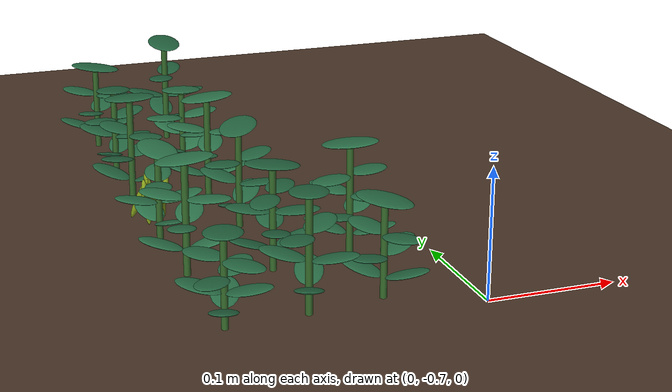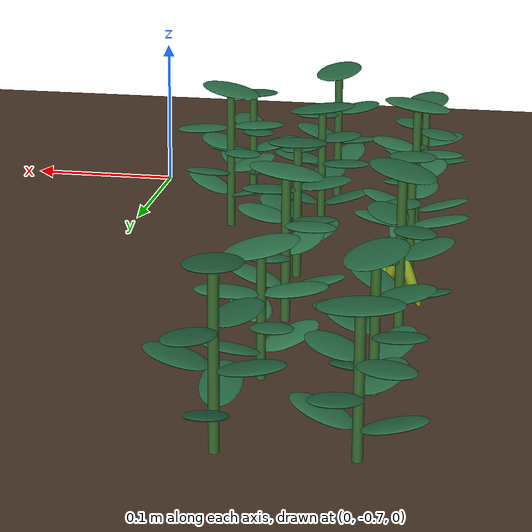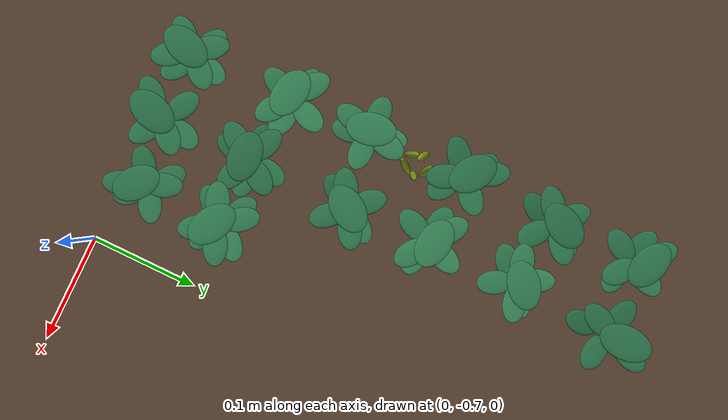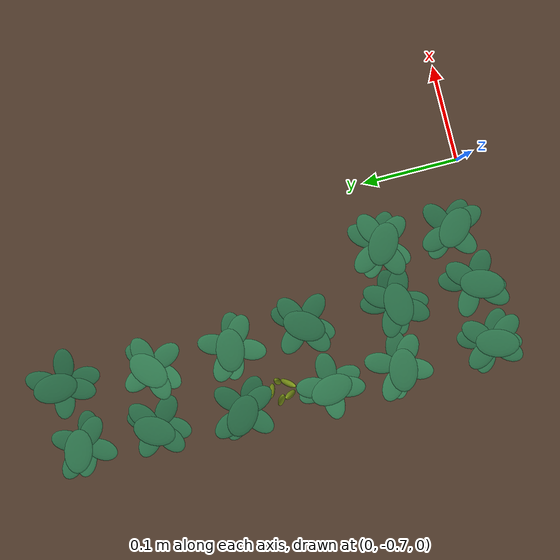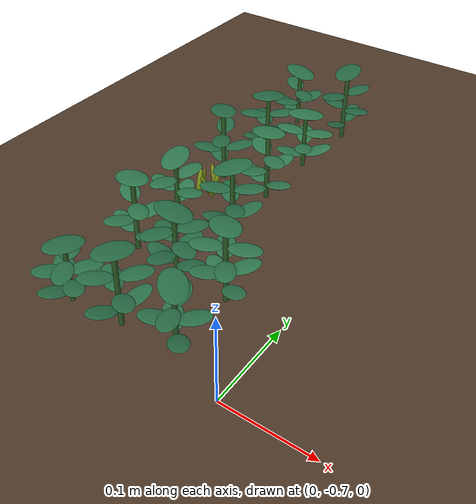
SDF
<sdf version="1.9">
 <world name="jim_field">
  <model name="ground_plane">
   <static>true</static>
   <link name="link">
    <collision name="collision">
     <geometry><plane><normal>0 0 1</normal><size>40 40</size></plane></geometry>
    </collision>
    <visual name="visual">
     <geometry><plane><normal>0 0 1</normal><size>40 40</size></plane></geometry>
     <material>
      <ambient>0.20 0.15 0.11 1</ambient>
      <diffuse>0.30 0.22 0.16 1</diffuse>
      <specular>0.01 0.01 0.01 1</specular>
     </material>
    </visual>
   </link>
  </model>
  <model name="field">
   <static>true</static>
   <pose>0.1837 -0.2516 0 0 0 0</pose>
   <model name="crop_2">
    <static>true</static>
    <pose>-0.3719 -0.4316 0 0 0 0</pose>
    <link name="link">
     <visual name="stem">
      <pose>0 0 0.0330 0 0 0</pose>
      <geometry><cylinder><radius>0.0025</radius><length>0.0660</length></cylinder></geometry>
      <material>
       <ambient>0.10 0.22 0.09 1</ambient>
       <diffuse>0.20 0.40 0.16 1</diffuse>
       <specular>0.05 0.06 0.05 1</specular>
      </material>
     </visual>
     <visual name="leaflet_0_0">
      <pose>-0.0053 -0.0167 0.0198 0 -0.300 4.4043</pose>
      <geometry><ellipsoid><radii>0.0170 0.0105 0.0016</radii></ellipsoid></geometry>
      <material>
       <ambient>0.083 0.221 0.127 1</ambient>
       <diffuse>0.155 0.422 0.269 1</diffuse>
       <specular>0.05 0.06 0.05 1</specular>
      </material>
     </visual>
     <visual name="leaflet_0_1">
      <pose>0.0053 0.0167 0.0198 0 -0.300 7.5459</pose>
      <geometry><ellipsoid><radii>0.0170 0.0105 0.0016</radii></ellipsoid></geometry>
      <material>
       <ambient>0.083 0.221 0.127 1</ambient>
       <diffuse>0.155 0.422 0.269 1</diffuse>
       <specular>0.05 0.06 0.05 1</specular>
      </material>
     </visual>
     <visual name="leaflet_1_0">
      <pose>0.0151 -0.0088 0.0300 0 -0.200 5.7543</pose>
      <geometry><ellipsoid><radii>0.0170 0.0105 0.0016</radii></ellipsoid></geometry>
      <material>
       <ambient>0.083 0.221 0.127 1</ambient>
       <diffuse>0.155 0.422 0.269 1</diffuse>
       <specular>0.05 0.06 0.05 1</specular>
      </material>
     </visual>
     <visual name="leaflet_1_1">
      <pose>-0.0151 0.0088 0.0300 0 -0.200 8.8959</pose>
      <geometry><ellipsoid><radii>0.0170 0.0105 0.0016</radii></ellipsoid></geometry>
      <material>
       <ambient>0.083 0.221 0.127 1</ambient>
       <diffuse>0.155 0.422 0.269 1</diffuse>
       <specular>0.05 0.06 0.05 1</specular>
      </material>
     </visual>
     <visual name="leaflet_2_0">
      <pose>0.0119 0.0128 0.0402 0 -0.100 7.1043</pose>
      <geometry><ellipsoid><radii>0.0170 0.0105 0.0016</radii></ellipsoid></geometry>
      <material>
       <ambient>0.083 0.221 0.127 1</ambient>
       <diffuse>0.155 0.422 0.269 1</diffuse>
       <specular>0.05 0.06 0.05 1</specular>
      </material>
     </visual>
     <visual name="leaflet_2_1">
      <pose>-0.0119 -0.0128 0.0402 0 -0.100 10.2459</pose>
      <geometry><ellipsoid><radii>0.0170 0.0105 0.0016</radii></ellipsoid></geometry>
      <material>
       <ambient>0.083 0.221 0.127 1</ambient>
       <diffuse>0.155 0.422 0.269 1</diffuse>
       <specular>0.05 0.06 0.05 1</specular>
      </material>
     </visual>
     <visual name="leaflet_3_0">
      <pose>-0.0099 0.0145 0.0505 0 0.000 8.4543</pose>
      <geometry><ellipsoid><radii>0.0170 0.0105 0.0016</radii></ellipsoid></geometry>
      <material>
       <ambient>0.083 0.221 0.127 1</ambient>
       <diffuse>0.155 0.422 0.269 1</diffuse>
       <specular>0.05 0.06 0.05 1</specular>
      </material>
     </visual>
     <visual name="leaflet_3_1">
      <pose>0.0099 -0.0145 0.0505 0 0.000 11.5959</pose>
      <geometry><ellipsoid><radii>0.0170 0.0105 0.0016</radii></ellipsoid></geometry>
      <material>
       <ambient>0.083 0.221 0.127 1</ambient>
       <diffuse>0.155 0.422 0.269 1</diffuse>
       <specular>0.05 0.06 0.05 1</specular>
      </material>
     </visual>
     <visual name="leaflet_terminal">
      <pose>0 0 0.0700 0 -0.12 4.4043</pose>
      <geometry><ellipsoid><radii>0.0215 0.0140 0.0018</radii></ellipsoid></geometry>
      <material>
       <ambient>0.083 0.221 0.127 1</ambient>
       <diffuse>0.155 0.422 0.269 1</diffuse>
       <specular>0.05 0.06 0.05 1</specular>
      </material>
     </visual>
    </link>
   </model>
   <model name="crop_3">
    <static>true</static>
    <pose>-0.3105 -0.4281 0 0 0 0</pose>
    <link name="link">
     <visual name="stem">
      <pose>0 0 0.0430 0 0 0</pose>
      <geometry><cylinder><radius>0.0027</radius><length>0.0861</length></cylinder></geometry>
      <material>
       <ambient>0.10 0.22 0.09 1</ambient>
       <diffuse>0.20 0.40 0.16 1</diffuse>
       <specular>0.05 0.06 0.05 1</specular>
      </material>
     </visual>
     <visual name="leaflet_0_0">
      <pose>-0.0060 -0.0176 0.0258 0 -0.300 4.3843</pose>
      <geometry><ellipsoid><radii>0.0170 0.0105 0.0016</radii></ellipsoid></geometry>
      <material>
       <ambient>0.080 0.217 0.124 1</ambient>
       <diffuse>0.150 0.414 0.264 1</diffuse>
       <specular>0.05 0.06 0.05 1</specular>
      </material>
     </visual>
     <visual name="leaflet_0_1">
      <pose>0.0060 0.0176 0.0258 0 -0.300 7.5259</pose>
      <geometry><ellipsoid><radii>0.0170 0.0105 0.0016</radii></ellipsoid></geometry>
      <material>
       <ambient>0.080 0.217 0.124 1</ambient>
       <diffuse>0.150 0.414 0.264 1</diffuse>
       <specular>0.05 0.06 0.05 1</specular>
      </material>
     </visual>
     <visual name="leaflet_1_0">
      <pose>0.0159 -0.0097 0.0436 0 -0.200 5.7343</pose>
      <geometry><ellipsoid><radii>0.0170 0.0105 0.0016</radii></ellipsoid></geometry>
      <material>
       <ambient>0.080 0.217 0.124 1</ambient>
       <diffuse>0.150 0.414 0.264 1</diffuse>
       <specular>0.05 0.06 0.05 1</specular>
      </material>
     </visual>
     <visual name="leaflet_1_1">
      <pose>-0.0159 0.0097 0.0436 0 -0.200 8.8759</pose>
      <geometry><ellipsoid><radii>0.0170 0.0105 0.0016</radii></ellipsoid></geometry>
      <material>
       <ambient>0.080 0.217 0.124 1</ambient>
       <diffuse>0.150 0.414 0.264 1</diffuse>
       <specular>0.05 0.06 0.05 1</specular>
      </material>
     </visual>
     <visual name="leaflet_2_0">
      <pose>0.0129 0.0134 0.0614 0 -0.100 7.0843</pose>
      <geometry><ellipsoid><radii>0.0170 0.0105 0.0016</radii></ellipsoid></geometry>
      <material>
       <ambient>0.080 0.217 0.124 1</ambient>
       <diffuse>0.150 0.414 0.264 1</diffuse>
       <specular>0.05 0.06 0.05 1</specular>
      </material>
     </visual>
     <visual name="leaflet_2_1">
      <pose>-0.0129 -0.0134 0.0614 0 -0.100 10.2259</pose>
      <geometry><ellipsoid><radii>0.0170 0.0105 0.0016</radii></ellipsoid></geometry>
      <material>
       <ambient>0.080 0.217 0.124 1</ambient>
       <diffuse>0.150 0.414 0.264 1</diffuse>
       <specular>0.05 0.06 0.05 1</specular>
      </material>
     </visual>
     <visual name="leaflet_terminal">
      <pose>0 0 0.0901 0 -0.12 4.3843</pose>
      <geometry><ellipsoid><radii>0.0215 0.0140 0.0018</radii></ellipsoid></geometry>
      <material>
       <ambient>0.080 0.217 0.124 1</ambient>
       <diffuse>0.150 0.414 0.264 1</diffuse>
       <specular>0.05 0.06 0.05 1</specular>
      </material>
     </visual>
    </link>
   </model>
   <model name="crop_4">
    <static>true</static>
    <pose>-0.2514 -0.4186 0 0 0 0</pose>
    <link name="link">
     <visual name="stem">
      <pose>0 0 0.0350 0 0 0</pose>
      <geometry><cylinder><radius>0.0026</radius><length>0.0701</length></cylinder></geometry>
      <material>
       <ambient>0.10 0.22 0.09 1</ambient>
       <diffuse>0.20 0.40 0.16 1</diffuse>
       <specular>0.05 0.06 0.05 1</specular>
      </material>
     </visual>
     <visual name="leaflet_0_0">
      <pose>-0.0129 0.0122 0.0210 0 -0.300 2.3859</pose>
      <geometry><ellipsoid><radii>0.0170 0.0105 0.0016</radii></ellipsoid></geometry>
      <material>
       <ambient>0.081 0.218 0.124 1</ambient>
       <diffuse>0.152 0.416 0.265 1</diffuse>
       <specular>0.05 0.06 0.05 1</specular>
      </material>
     </visual>
     <visual name="leaflet_0_1">
      <pose>0.0129 -0.0122 0.0210 0 -0.300 5.5275</pose>
      <geometry><ellipsoid><radii>0.0170 0.0105 0.0016</radii></ellipsoid></geometry>
      <material>
       <ambient>0.081 0.218 0.124 1</ambient>
       <diffuse>0.152 0.416 0.265 1</diffuse>
       <specular>0.05 0.06 0.05 1</specular>
      </material>
     </visual>
     <visual name="leaflet_1_0">
      <pose>-0.0147 -0.0099 0.0355 0 -0.200 3.7359</pose>
      <geometry><ellipsoid><radii>0.0170 0.0105 0.0016</radii></ellipsoid></geometry>
      <material>
       <ambient>0.081 0.218 0.124 1</ambient>
       <diffuse>0.152 0.416 0.265 1</diffuse>
       <specular>0.05 0.06 0.05 1</specular>
      </material>
     </visual>
     <visual name="leaflet_1_1">
      <pose>0.0147 0.0099 0.0355 0 -0.200 6.8775</pose>
      <geometry><ellipsoid><radii>0.0170 0.0105 0.0016</radii></ellipsoid></geometry>
      <material>
       <ambient>0.081 0.218 0.124 1</ambient>
       <diffuse>0.152 0.416 0.265 1</diffuse>
       <specular>0.05 0.06 0.05 1</specular>
      </material>
     </visual>
     <visual name="leaflet_2_0">
      <pose>0.0065 -0.0165 0.0500 0 -0.100 5.0859</pose>
      <geometry><ellipsoid><radii>0.0170 0.0105 0.0016</radii></ellipsoid></geometry>
      <material>
       <ambient>0.081 0.218 0.124 1</ambient>
       <diffuse>0.152 0.416 0.265 1</diffuse>
       <specular>0.05 0.06 0.05 1</specular>
      </material>
     </visual>
     <visual name="leaflet_2_1">
      <pose>-0.0065 0.0165 0.0500 0 -0.100 8.2275</pose>
      <geometry><ellipsoid><radii>0.0170 0.0105 0.0016</radii></ellipsoid></geometry>
      <material>
       <ambient>0.081 0.218 0.124 1</ambient>
       <diffuse>0.152 0.416 0.265 1</diffuse>
       <specular>0.05 0.06 0.05 1</specular>
      </material>
     </visual>
     <visual name="leaflet_terminal">
      <pose>0 0 0.0741 0 -0.12 2.3859</pose>
      <geometry><ellipsoid><radii>0.0215 0.0140 0.0018</radii></ellipsoid></geometry>
      <material>
       <ambient>0.081 0.218 0.124 1</ambient>
       <diffuse>0.152 0.416 0.265 1</diffuse>
       <specular>0.05 0.06 0.05 1</specular>
      </material>
     </visual>
    </link>
   </model>
   <model name="crop_19">
    <static>true</static>
    <pose>-0.3725 -0.3336 0 0 0 0</pose>
    <link name="link">
     <visual name="stem">
      <pose>0 0 0.0431 0 0 0</pose>
      <geometry><cylinder><radius>0.0027</radius><length>0.0863</length></cylinder></geometry>
      <material>
       <ambient>0.10 0.22 0.09 1</ambient>
       <diffuse>0.20 0.40 0.16 1</diffuse>
       <specular>0.05 0.06 0.05 1</specular>
      </material>
     </visual>
     <visual name="leaflet_0_0">
      <pose>0.0183 -0.0033 0.0259 0 -0.300 6.1035</pose>
      <geometry><ellipsoid><radii>0.0170 0.0105 0.0016</radii></ellipsoid></geometry>
      <material>
       <ambient>0.093 0.238 0.140 1</ambient>
       <diffuse>0.176 0.456 0.293 1</diffuse>
       <specular>0.05 0.06 0.05 1</specular>
      </material>
     </visual>
     <visual name="leaflet_0_1">
      <pose>-0.0183 0.0033 0.0259 0 -0.300 9.2450</pose>
      <geometry><ellipsoid><radii>0.0170 0.0105 0.0016</radii></ellipsoid></geometry>
      <material>
       <ambient>0.093 0.238 0.140 1</ambient>
       <diffuse>0.176 0.456 0.293 1</diffuse>
       <specular>0.05 0.06 0.05 1</specular>
      </material>
     </visual>
     <visual name="leaflet_1_0">
      <pose>0.0073 0.0171 0.0437 0 -0.200 7.4535</pose>
      <geometry><ellipsoid><radii>0.0170 0.0105 0.0016</radii></ellipsoid></geometry>
      <material>
       <ambient>0.093 0.238 0.140 1</ambient>
       <diffuse>0.176 0.456 0.293 1</diffuse>
       <specular>0.05 0.06 0.05 1</specular>
      </material>
     </visual>
     <visual name="leaflet_1_1">
      <pose>-0.0073 -0.0171 0.0437 0 -0.200 10.5950</pose>
      <geometry><ellipsoid><radii>0.0170 0.0105 0.0016</radii></ellipsoid></geometry>
      <material>
       <ambient>0.093 0.238 0.140 1</ambient>
       <diffuse>0.176 0.456 0.293 1</diffuse>
       <specular>0.05 0.06 0.05 1</specular>
      </material>
     </visual>
     <visual name="leaflet_2_0">
      <pose>-0.0151 0.0108 0.0615 0 -0.100 8.8035</pose>
      <geometry><ellipsoid><radii>0.0170 0.0105 0.0016</radii></ellipsoid></geometry>
      <material>
       <ambient>0.093 0.238 0.140 1</ambient>
       <diffuse>0.176 0.456 0.293 1</diffuse>
       <specular>0.05 0.06 0.05 1</specular>
      </material>
     </visual>
     <visual name="leaflet_2_1">
      <pose>0.0151 -0.0108 0.0615 0 -0.100 11.9450</pose>
      <geometry><ellipsoid><radii>0.0170 0.0105 0.0016</radii></ellipsoid></geometry>
      <material>
       <ambient>0.093 0.238 0.140 1</ambient>
       <diffuse>0.176 0.456 0.293 1</diffuse>
       <specular>0.05 0.06 0.05 1</specular>
      </material>
     </visual>
     <visual name="leaflet_terminal">
      <pose>0 0 0.0903 0 -0.12 6.1035</pose>
      <geometry><ellipsoid><radii>0.0215 0.0140 0.0018</radii></ellipsoid></geometry>
      <material>
       <ambient>0.093 0.238 0.140 1</ambient>
       <diffuse>0.176 0.456 0.293 1</diffuse>
       <specular>0.05 0.06 0.05 1</specular>
      </material>
     </visual>
    </link>
   </model>
   <model name="crop_20">
    <static>true</static>
    <pose>-0.3099 -0.3455 0 0 0 0</pose>
    <link name="link">
     <visual name="stem">
      <pose>0 0 0.0394 0 0 0</pose>
      <geometry><cylinder><radius>0.0026</radius><length>0.0788</length></cylinder></geometry>
      <material>
       <ambient>0.10 0.22 0.09 1</ambient>
       <diffuse>0.20 0.40 0.16 1</diffuse>
       <specular>0.05 0.06 0.05 1</specular>
      </material>
     </visual>
     <visual name="leaflet_0_0">
      <pose>-0.0182 -0.0008 0.0236 0 -0.300 3.1881</pose>
      <geometry><ellipsoid><radii>0.0170 0.0105 0.0016</radii></ellipsoid></geometry>
      <material>
       <ambient>0.076 0.210 0.118 1</ambient>
       <diffuse>0.142 0.400 0.254 1</diffuse>
       <specular>0.05 0.06 0.05 1</specular>
      </material>
     </visual>
     <visual name="leaflet_0_1">
      <pose>0.0182 0.0008 0.0236 0 -0.300 6.3297</pose>
      <geometry><ellipsoid><radii>0.0170 0.0105 0.0016</radii></ellipsoid></geometry>
      <material>
       <ambient>0.076 0.210 0.118 1</ambient>
       <diffuse>0.142 0.400 0.254 1</diffuse>
       <specular>0.05 0.06 0.05 1</specular>
      </material>
     </visual>
     <visual name="leaflet_1_0">
      <pose>-0.0032 -0.0179 0.0358 0 -0.200 4.5381</pose>
      <geometry><ellipsoid><radii>0.0170 0.0105 0.0016</radii></ellipsoid></geometry>
      <material>
       <ambient>0.076 0.210 0.118 1</ambient>
       <diffuse>0.142 0.400 0.254 1</diffuse>
       <specular>0.05 0.06 0.05 1</specular>
      </material>
     </visual>
     <visual name="leaflet_1_1">
      <pose>0.0032 0.0179 0.0358 0 -0.200 7.6797</pose>
      <geometry><ellipsoid><radii>0.0170 0.0105 0.0016</radii></ellipsoid></geometry>
      <material>
       <ambient>0.076 0.210 0.118 1</ambient>
       <diffuse>0.142 0.400 0.254 1</diffuse>
       <specular>0.05 0.06 0.05 1</specular>
      </material>
     </visual>
     <visual name="leaflet_2_0">
      <pose>0.0168 -0.0070 0.0480 0 -0.100 5.8881</pose>
      <geometry><ellipsoid><radii>0.0170 0.0105 0.0016</radii></ellipsoid></geometry>
      <material>
       <ambient>0.076 0.210 0.118 1</ambient>
       <diffuse>0.142 0.400 0.254 1</diffuse>
       <specular>0.05 0.06 0.05 1</specular>
      </material>
     </visual>
     <visual name="leaflet_2_1">
      <pose>-0.0168 0.0070 0.0480 0 -0.100 9.0297</pose>
      <geometry><ellipsoid><radii>0.0170 0.0105 0.0016</radii></ellipsoid></geometry>
      <material>
       <ambient>0.076 0.210 0.118 1</ambient>
       <diffuse>0.142 0.400 0.254 1</diffuse>
       <specular>0.05 0.06 0.05 1</specular>
      </material>
     </visual>
     <visual name="leaflet_3_0">
      <pose>0.0105 0.0149 0.0603 0 0.000 7.2381</pose>
      <geometry><ellipsoid><radii>0.0170 0.0105 0.0016</radii></ellipsoid></geometry>
      <material>
       <ambient>0.076 0.210 0.118 1</ambient>
       <diffuse>0.142 0.400 0.254 1</diffuse>
       <specular>0.05 0.06 0.05 1</specular>
      </material>
     </visual>
     <visual name="leaflet_3_1">
      <pose>-0.0105 -0.0149 0.0603 0 0.000 10.3797</pose>
      <geometry><ellipsoid><radii>0.0170 0.0105 0.0016</radii></ellipsoid></geometry>
      <material>
       <ambient>0.076 0.210 0.118 1</ambient>
       <diffuse>0.142 0.400 0.254 1</diffuse>
       <specular>0.05 0.06 0.05 1</specular>
      </material>
     </visual>
     <visual name="leaflet_terminal">
      <pose>0 0 0.0828 0 -0.12 3.1881</pose>
      <geometry><ellipsoid><radii>0.0215 0.0140 0.0018</radii></ellipsoid></geometry>
      <material>
       <ambient>0.076 0.210 0.118 1</ambient>
       <diffuse>0.142 0.400 0.254 1</diffuse>
       <specular>0.05 0.06 0.05 1</specular>
      </material>
     </visual>
    </link>
   </model>
   <model name="crop_21">
    <static>true</static>
    <pose>-0.2493 -0.3447 0 0 0 0</pose>
    <link name="link">
     <visual name="stem">
      <pose>0 0 0.0443 0 0 0</pose>
      <geometry><cylinder><radius>0.0027</radius><length>0.0886</length></cylinder></geometry>
      <material>
       <ambient>0.10 0.22 0.09 1</ambient>
       <diffuse>0.20 0.40 0.16 1</diffuse>
       <specular>0.05 0.06 0.05 1</specular>
      </material>
     </visual>
     <visual name="leaflet_0_0">
      <pose>0.0163 -0.0092 0.0266 0 -0.300 5.7681</pose>
      <geometry><ellipsoid><radii>0.0170 0.0105 0.0016</radii></ellipsoid></geometry>
      <material>
       <ambient>0.088 0.230 0.134 1</ambient>
       <diffuse>0.166 0.440 0.282 1</diffuse>
       <specular>0.05 0.06 0.05 1</specular>
      </material>
     </visual>
     <visual name="leaflet_0_1">
      <pose>-0.0163 0.0092 0.0266 0 -0.300 8.9097</pose>
      <geometry><ellipsoid><radii>0.0170 0.0105 0.0016</radii></ellipsoid></geometry>
      <material>
       <ambient>0.088 0.230 0.134 1</ambient>
       <diffuse>0.166 0.440 0.282 1</diffuse>
       <specular>0.05 0.06 0.05 1</specular>
      </material>
     </visual>
     <visual name="leaflet_1_0">
      <pose>0.0126 0.0139 0.0403 0 -0.200 7.1181</pose>
      <geometry><ellipsoid><radii>0.0170 0.0105 0.0016</radii></ellipsoid></geometry>
      <material>
       <ambient>0.088 0.230 0.134 1</ambient>
       <diffuse>0.166 0.440 0.282 1</diffuse>
       <specular>0.05 0.06 0.05 1</specular>
      </material>
     </visual>
     <visual name="leaflet_1_1">
      <pose>-0.0126 -0.0139 0.0403 0 -0.200 10.2597</pose>
      <geometry><ellipsoid><radii>0.0170 0.0105 0.0016</radii></ellipsoid></geometry>
      <material>
       <ambient>0.088 0.230 0.134 1</ambient>
       <diffuse>0.166 0.440 0.282 1</diffuse>
       <specular>0.05 0.06 0.05 1</specular>
      </material>
     </visual>
     <visual name="leaflet_2_0">
      <pose>-0.0108 0.0153 0.0540 0 -0.100 8.4681</pose>
      <geometry><ellipsoid><radii>0.0170 0.0105 0.0016</radii></ellipsoid></geometry>
      <material>
       <ambient>0.088 0.230 0.134 1</ambient>
       <diffuse>0.166 0.440 0.282 1</diffuse>
       <specular>0.05 0.06 0.05 1</specular>
      </material>
     </visual>
     <visual name="leaflet_2_1">
      <pose>0.0108 -0.0153 0.0540 0 -0.100 11.6097</pose>
      <geometry><ellipsoid><radii>0.0170 0.0105 0.0016</radii></ellipsoid></geometry>
      <material>
       <ambient>0.088 0.230 0.134 1</ambient>
       <diffuse>0.166 0.440 0.282 1</diffuse>
       <specular>0.05 0.06 0.05 1</specular>
      </material>
     </visual>
     <visual name="leaflet_3_0">
      <pose>-0.0173 -0.0072 0.0678 0 0.000 9.8181</pose>
      <geometry><ellipsoid><radii>0.0170 0.0105 0.0016</radii></ellipsoid></geometry>
      <material>
       <ambient>0.088 0.230 0.134 1</ambient>
       <diffuse>0.166 0.440 0.282 1</diffuse>
       <specular>0.05 0.06 0.05 1</specular>
      </material>
     </visual>
     <visual name="leaflet_3_1">
      <pose>0.0173 0.0072 0.0678 0 0.000 12.9597</pose>
      <geometry><ellipsoid><radii>0.0170 0.0105 0.0016</radii></ellipsoid></geometry>
      <material>
       <ambient>0.088 0.230 0.134 1</ambient>
       <diffuse>0.166 0.440 0.282 1</diffuse>
       <specular>0.05 0.06 0.05 1</specular>
      </material>
     </visual>
     <visual name="leaflet_terminal">
      <pose>0 0 0.0926 0 -0.12 5.7681</pose>
      <geometry><ellipsoid><radii>0.0215 0.0140 0.0018</radii></ellipsoid></geometry>
      <material>
       <ambient>0.088 0.230 0.134 1</ambient>
       <diffuse>0.166 0.440 0.282 1</diffuse>
       <specular>0.05 0.06 0.05 1</specular>
      </material>
     </visual>
    </link>
   </model>
   <model name="crop_36">
    <static>true</static>
    <pose>-0.3754 -0.2620 0 0 0 0</pose>
    <link name="link">
     <visual name="stem">
      <pose>0 0 0.0359 0 0 0</pose>
      <geometry><cylinder><radius>0.0026</radius><length>0.0717</length></cylinder></geometry>
      <material>
       <ambient>0.10 0.22 0.09 1</ambient>
       <diffuse>0.20 0.40 0.16 1</diffuse>
       <specular>0.05 0.06 0.05 1</specular>
      </material>
     </visual>
     <visual name="leaflet_0_0">
      <pose>-0.0039 0.0174 0.0215 0 -0.300 1.7914</pose>
      <geometry><ellipsoid><radii>0.0170 0.0105 0.0016</radii></ellipsoid></geometry>
      <material>
       <ambient>0.091 0.235 0.138 1</ambient>
       <diffuse>0.172 0.450 0.289 1</diffuse>
       <specular>0.05 0.06 0.05 1</specular>
      </material>
     </visual>
     <visual name="leaflet_0_1">
      <pose>0.0039 -0.0174 0.0215 0 -0.300 4.9330</pose>
      <geometry><ellipsoid><radii>0.0170 0.0105 0.0016</radii></ellipsoid></geometry>
      <material>
       <ambient>0.091 0.235 0.138 1</ambient>
       <diffuse>0.172 0.450 0.289 1</diffuse>
       <specular>0.05 0.06 0.05 1</specular>
      </material>
     </visual>
     <visual name="leaflet_1_0">
      <pose>-0.0178 0.0000 0.0363 0 -0.200 3.1414</pose>
      <geometry><ellipsoid><radii>0.0170 0.0105 0.0016</radii></ellipsoid></geometry>
      <material>
       <ambient>0.091 0.235 0.138 1</ambient>
       <diffuse>0.172 0.450 0.289 1</diffuse>
       <specular>0.05 0.06 0.05 1</specular>
      </material>
     </visual>
     <visual name="leaflet_1_1">
      <pose>0.0178 -0.0000 0.0363 0 -0.200 6.2830</pose>
      <geometry><ellipsoid><radii>0.0170 0.0105 0.0016</radii></ellipsoid></geometry>
      <material>
       <ambient>0.091 0.235 0.138 1</ambient>
       <diffuse>0.172 0.450 0.289 1</diffuse>
       <specular>0.05 0.06 0.05 1</specular>
      </material>
     </visual>
     <visual name="leaflet_2_0">
      <pose>-0.0039 -0.0174 0.0512 0 -0.100 4.4914</pose>
      <geometry><ellipsoid><radii>0.0170 0.0105 0.0016</radii></ellipsoid></geometry>
      <material>
       <ambient>0.091 0.235 0.138 1</ambient>
       <diffuse>0.172 0.450 0.289 1</diffuse>
       <specular>0.05 0.06 0.05 1</specular>
      </material>
     </visual>
     <visual name="leaflet_2_1">
      <pose>0.0039 0.0174 0.0512 0 -0.100 7.6330</pose>
      <geometry><ellipsoid><radii>0.0170 0.0105 0.0016</radii></ellipsoid></geometry>
      <material>
       <ambient>0.091 0.235 0.138 1</ambient>
       <diffuse>0.172 0.450 0.289 1</diffuse>
       <specular>0.05 0.06 0.05 1</specular>
      </material>
     </visual>
     <visual name="leaflet_terminal">
      <pose>0 0 0.0757 0 -0.12 1.7914</pose>
      <geometry><ellipsoid><radii>0.0215 0.0140 0.0018</radii></ellipsoid></geometry>
      <material>
       <ambient>0.091 0.235 0.138 1</ambient>
       <diffuse>0.172 0.450 0.289 1</diffuse>
       <specular>0.05 0.06 0.05 1</specular>
      </material>
     </visual>
    </link>
   </model>
   <model name="crop_37">
    <static>true</static>
    <pose>-0.3077 -0.2510 0 0 0 0</pose>
    <link name="link">
     <visual name="stem">
      <pose>0 0 0.0399 0 0 0</pose>
      <geometry><cylinder><radius>0.0026</radius><length>0.0799</length></cylinder></geometry>
      <material>
       <ambient>0.10 0.22 0.09 1</ambient>
       <diffuse>0.20 0.40 0.16 1</diffuse>
       <specular>0.05 0.06 0.05 1</specular>
      </material>
     </visual>
     <visual name="leaflet_0_0">
      <pose>0.0103 0.0151 0.0240 0 -0.300 0.9721</pose>
      <geometry><ellipsoid><radii>0.0170 0.0105 0.0016</radii></ellipsoid></geometry>
      <material>
       <ambient>0.079 0.215 0.122 1</ambient>
       <diffuse>0.148 0.410 0.261 1</diffuse>
       <specular>0.05 0.06 0.05 1</specular>
      </material>
     </visual>
     <visual name="leaflet_0_1">
      <pose>-0.0103 -0.0151 0.0240 0 -0.300 4.1137</pose>
      <geometry><ellipsoid><radii>0.0170 0.0105 0.0016</radii></ellipsoid></geometry>
      <material>
       <ambient>0.079 0.215 0.122 1</ambient>
       <diffuse>0.148 0.410 0.261 1</diffuse>
       <specular>0.05 0.06 0.05 1</specular>
      </material>
     </visual>
     <visual name="leaflet_1_0">
      <pose>-0.0125 0.0133 0.0405 0 -0.200 2.3221</pose>
      <geometry><ellipsoid><radii>0.0170 0.0105 0.0016</radii></ellipsoid></geometry>
      <material>
       <ambient>0.079 0.215 0.122 1</ambient>
       <diffuse>0.148 0.410 0.261 1</diffuse>
       <specular>0.05 0.06 0.05 1</specular>
      </material>
     </visual>
     <visual name="leaflet_1_1">
      <pose>0.0125 -0.0133 0.0405 0 -0.200 5.4637</pose>
      <geometry><ellipsoid><radii>0.0170 0.0105 0.0016</radii></ellipsoid></geometry>
      <material>
       <ambient>0.079 0.215 0.122 1</ambient>
       <diffuse>0.148 0.410 0.261 1</diffuse>
       <specular>0.05 0.06 0.05 1</specular>
      </material>
     </visual>
     <visual name="leaflet_2_0">
      <pose>-0.0157 -0.0092 0.0570 0 -0.100 3.6721</pose>
      <geometry><ellipsoid><radii>0.0170 0.0105 0.0016</radii></ellipsoid></geometry>
      <material>
       <ambient>0.079 0.215 0.122 1</ambient>
       <diffuse>0.148 0.410 0.261 1</diffuse>
       <specular>0.05 0.06 0.05 1</specular>
      </material>
     </visual>
     <visual name="leaflet_2_1">
      <pose>0.0157 0.0092 0.0570 0 -0.100 6.8137</pose>
      <geometry><ellipsoid><radii>0.0170 0.0105 0.0016</radii></ellipsoid></geometry>
      <material>
       <ambient>0.079 0.215 0.122 1</ambient>
       <diffuse>0.148 0.410 0.261 1</diffuse>
       <specular>0.05 0.06 0.05 1</specular>
      </material>
     </visual>
     <visual name="leaflet_terminal">
      <pose>0 0 0.0839 0 -0.12 0.9721</pose>
      <geometry><ellipsoid><radii>0.0215 0.0140 0.0018</radii></ellipsoid></geometry>
      <material>
       <ambient>0.079 0.215 0.122 1</ambient>
       <diffuse>0.148 0.410 0.261 1</diffuse>
       <specular>0.05 0.06 0.05 1</specular>
      </material>
     </visual>
    </link>
   </model>
   <model name="crop_53">
    <static>true</static>
    <pose>-0.3766 -0.1719 0 0 0 0</pose>
    <link name="link">
     <visual name="stem">
      <pose>0 0 0.0440 0 0 0</pose>
      <geometry><cylinder><radius>0.0027</radius><length>0.0880</length></cylinder></geometry>
      <material>
       <ambient>0.10 0.22 0.09 1</ambient>
       <diffuse>0.20 0.40 0.16 1</diffuse>
       <specular>0.05 0.06 0.05 1</specular>
      </material>
     </visual>
     <visual name="leaflet_0_0">
      <pose>0.0150 -0.0111 0.0264 0 -0.300 5.6452</pose>
      <geometry><ellipsoid><radii>0.0170 0.0105 0.0016</radii></ellipsoid></geometry>
      <material>
       <ambient>0.076 0.211 0.118 1</ambient>
       <diffuse>0.143 0.401 0.255 1</diffuse>
       <specular>0.05 0.06 0.05 1</specular>
      </material>
     </visual>
     <visual name="leaflet_0_1">
      <pose>-0.0150 0.0111 0.0264 0 -0.300 8.7868</pose>
      <geometry><ellipsoid><radii>0.0170 0.0105 0.0016</radii></ellipsoid></geometry>
      <material>
       <ambient>0.076 0.211 0.118 1</ambient>
       <diffuse>0.143 0.401 0.255 1</diffuse>
       <specular>0.05 0.06 0.05 1</specular>
      </material>
     </visual>
     <visual name="leaflet_1_0">
      <pose>0.0142 0.0122 0.0446 0 -0.200 6.9952</pose>
      <geometry><ellipsoid><radii>0.0170 0.0105 0.0016</radii></ellipsoid></geometry>
      <material>
       <ambient>0.076 0.211 0.118 1</ambient>
       <diffuse>0.143 0.401 0.255 1</diffuse>
       <specular>0.05 0.06 0.05 1</specular>
      </material>
     </visual>
     <visual name="leaflet_1_1">
      <pose>-0.0142 -0.0122 0.0446 0 -0.200 10.1368</pose>
      <geometry><ellipsoid><radii>0.0170 0.0105 0.0016</radii></ellipsoid></geometry>
      <material>
       <ambient>0.076 0.211 0.118 1</ambient>
       <diffuse>0.143 0.401 0.255 1</diffuse>
       <specular>0.05 0.06 0.05 1</specular>
      </material>
     </visual>
     <visual name="leaflet_2_0">
      <pose>-0.0088 0.0165 0.0628 0 -0.100 8.3452</pose>
      <geometry><ellipsoid><radii>0.0170 0.0105 0.0016</radii></ellipsoid></geometry>
      <material>
       <ambient>0.076 0.211 0.118 1</ambient>
       <diffuse>0.143 0.401 0.255 1</diffuse>
       <specular>0.05 0.06 0.05 1</specular>
      </material>
     </visual>
     <visual name="leaflet_2_1">
      <pose>0.0088 -0.0165 0.0628 0 -0.100 11.4868</pose>
      <geometry><ellipsoid><radii>0.0170 0.0105 0.0016</radii></ellipsoid></geometry>
      <material>
       <ambient>0.076 0.211 0.118 1</ambient>
       <diffuse>0.143 0.401 0.255 1</diffuse>
       <specular>0.05 0.06 0.05 1</specular>
      </material>
     </visual>
     <visual name="leaflet_terminal">
      <pose>0 0 0.0920 0 -0.12 5.6452</pose>
      <geometry><ellipsoid><radii>0.0215 0.0140 0.0018</radii></ellipsoid></geometry>
      <material>
       <ambient>0.076 0.211 0.118 1</ambient>
       <diffuse>0.143 0.401 0.255 1</diffuse>
       <specular>0.05 0.06 0.05 1</specular>
      </material>
     </visual>
    </link>
   </model>
   <model name="crop_54">
    <static>true</static>
    <pose>-0.3125 -0.1756 0 0 0 0</pose>
    <link name="link">
     <visual name="stem">
      <pose>0 0 0.0417 0 0 0</pose>
      <geometry><cylinder><radius>0.0027</radius><length>0.0834</length></cylinder></geometry>
      <material>
       <ambient>0.10 0.22 0.09 1</ambient>
       <diffuse>0.20 0.40 0.16 1</diffuse>
       <specular>0.05 0.06 0.05 1</specular>
      </material>
     </visual>
     <visual name="leaflet_0_0">
      <pose>0.0182 -0.0031 0.0250 0 -0.300 6.1157</pose>
      <geometry><ellipsoid><radii>0.0170 0.0105 0.0016</radii></ellipsoid></geometry>
      <material>
       <ambient>0.092 0.237 0.140 1</ambient>
       <diffuse>0.175 0.455 0.292 1</diffuse>
       <specular>0.05 0.06 0.05 1</specular>
      </material>
     </visual>
     <visual name="leaflet_0_1">
      <pose>-0.0182 0.0031 0.0250 0 -0.300 9.2573</pose>
      <geometry><ellipsoid><radii>0.0170 0.0105 0.0016</radii></ellipsoid></geometry>
      <material>
       <ambient>0.092 0.237 0.140 1</ambient>
       <diffuse>0.175 0.455 0.292 1</diffuse>
       <specular>0.05 0.06 0.05 1</specular>
      </material>
     </visual>
     <visual name="leaflet_1_0">
      <pose>0.0070 0.0171 0.0423 0 -0.200 7.4657</pose>
      <geometry><ellipsoid><radii>0.0170 0.0105 0.0016</radii></ellipsoid></geometry>
      <material>
       <ambient>0.092 0.237 0.140 1</ambient>
       <diffuse>0.175 0.455 0.292 1</diffuse>
       <specular>0.05 0.06 0.05 1</specular>
      </material>
     </visual>
     <visual name="leaflet_1_1">
      <pose>-0.0070 -0.0171 0.0423 0 -0.200 10.6073</pose>
      <geometry><ellipsoid><radii>0.0170 0.0105 0.0016</radii></ellipsoid></geometry>
      <material>
       <ambient>0.092 0.237 0.140 1</ambient>
       <diffuse>0.175 0.455 0.292 1</diffuse>
       <specular>0.05 0.06 0.05 1</specular>
      </material>
     </visual>
     <visual name="leaflet_2_0">
      <pose>-0.0151 0.0106 0.0595 0 -0.100 8.8157</pose>
      <geometry><ellipsoid><radii>0.0170 0.0105 0.0016</radii></ellipsoid></geometry>
      <material>
       <ambient>0.092 0.237 0.140 1</ambient>
       <diffuse>0.175 0.455 0.292 1</diffuse>
       <specular>0.05 0.06 0.05 1</specular>
      </material>
     </visual>
     <visual name="leaflet_2_1">
      <pose>0.0151 -0.0106 0.0595 0 -0.100 11.9573</pose>
      <geometry><ellipsoid><radii>0.0170 0.0105 0.0016</radii></ellipsoid></geometry>
      <material>
       <ambient>0.092 0.237 0.140 1</ambient>
       <diffuse>0.175 0.455 0.292 1</diffuse>
       <specular>0.05 0.06 0.05 1</specular>
      </material>
     </visual>
     <visual name="leaflet_terminal">
      <pose>0 0 0.0874 0 -0.12 6.1157</pose>
      <geometry><ellipsoid><radii>0.0215 0.0140 0.0018</radii></ellipsoid></geometry>
      <material>
       <ambient>0.092 0.237 0.140 1</ambient>
       <diffuse>0.175 0.455 0.292 1</diffuse>
       <specular>0.05 0.06 0.05 1</specular>
      </material>
     </visual>
    </link>
   </model>
   <model name="crop_70">
    <static>true</static>
    <pose>-0.3718 -0.0831 0 0 0 0</pose>
    <link name="link">
     <visual name="stem">
      <pose>0 0 0.0350 0 0 0</pose>
      <geometry><cylinder><radius>0.0026</radius><length>0.0701</length></cylinder></geometry>
      <material>
       <ambient>0.10 0.22 0.09 1</ambient>
       <diffuse>0.20 0.40 0.16 1</diffuse>
       <specular>0.05 0.06 0.05 1</specular>
      </material>
     </visual>
     <visual name="leaflet_0_0">
      <pose>-0.0083 -0.0157 0.0210 0 -0.300 4.2252</pose>
      <geometry><ellipsoid><radii>0.0170 0.0105 0.0016</radii></ellipsoid></geometry>
      <material>
       <ambient>0.077 0.211 0.119 1</ambient>
       <diffuse>0.143 0.402 0.256 1</diffuse>
       <specular>0.05 0.06 0.05 1</specular>
      </material>
     </visual>
     <visual name="leaflet_0_1">
      <pose>0.0083 0.0157 0.0210 0 -0.300 7.3667</pose>
      <geometry><ellipsoid><radii>0.0170 0.0105 0.0016</radii></ellipsoid></geometry>
      <material>
       <ambient>0.077 0.211 0.119 1</ambient>
       <diffuse>0.143 0.402 0.256 1</diffuse>
       <specular>0.05 0.06 0.05 1</specular>
      </material>
     </visual>
     <visual name="leaflet_1_0">
      <pose>0.0135 -0.0115 0.0355 0 -0.200 5.5752</pose>
      <geometry><ellipsoid><radii>0.0170 0.0105 0.0016</radii></ellipsoid></geometry>
      <material>
       <ambient>0.077 0.211 0.119 1</ambient>
       <diffuse>0.143 0.402 0.256 1</diffuse>
       <specular>0.05 0.06 0.05 1</specular>
      </material>
     </visual>
     <visual name="leaflet_1_1">
      <pose>-0.0135 0.0115 0.0355 0 -0.200 8.7167</pose>
      <geometry><ellipsoid><radii>0.0170 0.0105 0.0016</radii></ellipsoid></geometry>
      <material>
       <ambient>0.077 0.211 0.119 1</ambient>
       <diffuse>0.143 0.402 0.256 1</diffuse>
       <specular>0.05 0.06 0.05 1</specular>
      </material>
     </visual>
     <visual name="leaflet_2_0">
      <pose>0.0142 0.0106 0.0500 0 -0.100 6.9252</pose>
      <geometry><ellipsoid><radii>0.0170 0.0105 0.0016</radii></ellipsoid></geometry>
      <material>
       <ambient>0.077 0.211 0.119 1</ambient>
       <diffuse>0.143 0.402 0.256 1</diffuse>
       <specular>0.05 0.06 0.05 1</specular>
      </material>
     </visual>
     <visual name="leaflet_2_1">
      <pose>-0.0142 -0.0106 0.0500 0 -0.100 10.0667</pose>
      <geometry><ellipsoid><radii>0.0170 0.0105 0.0016</radii></ellipsoid></geometry>
      <material>
       <ambient>0.077 0.211 0.119 1</ambient>
       <diffuse>0.143 0.402 0.256 1</diffuse>
       <specular>0.05 0.06 0.05 1</specular>
      </material>
     </visual>
     <visual name="leaflet_terminal">
      <pose>0 0 0.0741 0 -0.12 4.2252</pose>
      <geometry><ellipsoid><radii>0.0215 0.0140 0.0018</radii></ellipsoid></geometry>
      <material>
       <ambient>0.077 0.211 0.119 1</ambient>
       <diffuse>0.143 0.402 0.256 1</diffuse>
       <specular>0.05 0.06 0.05 1</specular>
      </material>
     </visual>
    </link>
   </model>
   <model name="crop_71">
    <static>true</static>
    <pose>-0.3130 -0.0917 0 0 0 0</pose>
    <link name="link">
     <visual name="stem">
      <pose>0 0 0.0337 0 0 0</pose>
      <geometry><cylinder><radius>0.0025</radius><length>0.0673</length></cylinder></geometry>
      <material>
       <ambient>0.10 0.22 0.09 1</ambient>
       <diffuse>0.20 0.40 0.16 1</diffuse>
       <specular>0.05 0.06 0.05 1</specular>
      </material>
     </visual>
     <visual name="leaflet_0_0">
      <pose>-0.0135 -0.0113 0.0202 0 -0.300 3.8388</pose>
      <geometry><ellipsoid><radii>0.0170 0.0105 0.0016</radii></ellipsoid></geometry>
      <material>
       <ambient>0.093 0.238 0.141 1</ambient>
       <diffuse>0.176 0.457 0.294 1</diffuse>
       <specular>0.05 0.06 0.05 1</specular>
      </material>
     </visual>
     <visual name="leaflet_0_1">
      <pose>0.0135 0.0113 0.0202 0 -0.300 6.9804</pose>
      <geometry><ellipsoid><radii>0.0170 0.0105 0.0016</radii></ellipsoid></geometry>
      <material>
       <ambient>0.093 0.238 0.141 1</ambient>
       <diffuse>0.176 0.457 0.294 1</diffuse>
       <specular>0.05 0.06 0.05 1</specular>
      </material>
     </visual>
     <visual name="leaflet_1_0">
      <pose>0.0081 -0.0156 0.0341 0 -0.200 5.1888</pose>
      <geometry><ellipsoid><radii>0.0170 0.0105 0.0016</radii></ellipsoid></geometry>
      <material>
       <ambient>0.093 0.238 0.141 1</ambient>
       <diffuse>0.176 0.457 0.294 1</diffuse>
       <specular>0.05 0.06 0.05 1</specular>
      </material>
     </visual>
     <visual name="leaflet_1_1">
      <pose>-0.0081 0.0156 0.0341 0 -0.200 8.3304</pose>
      <geometry><ellipsoid><radii>0.0170 0.0105 0.0016</radii></ellipsoid></geometry>
      <material>
       <ambient>0.093 0.238 0.141 1</ambient>
       <diffuse>0.176 0.457 0.294 1</diffuse>
       <specular>0.05 0.06 0.05 1</specular>
      </material>
     </visual>
     <visual name="leaflet_2_0">
      <pose>0.0170 0.0044 0.0480 0 -0.100 6.5388</pose>
      <geometry><ellipsoid><radii>0.0170 0.0105 0.0016</radii></ellipsoid></geometry>
      <material>
       <ambient>0.093 0.238 0.141 1</ambient>
       <diffuse>0.176 0.457 0.294 1</diffuse>
       <specular>0.05 0.06 0.05 1</specular>
      </material>
     </visual>
     <visual name="leaflet_2_1">
      <pose>-0.0170 -0.0044 0.0480 0 -0.100 9.6804</pose>
      <geometry><ellipsoid><radii>0.0170 0.0105 0.0016</radii></ellipsoid></geometry>
      <material>
       <ambient>0.093 0.238 0.141 1</ambient>
       <diffuse>0.176 0.457 0.294 1</diffuse>
       <specular>0.05 0.06 0.05 1</specular>
      </material>
     </visual>
     <visual name="leaflet_terminal">
      <pose>0 0 0.0713 0 -0.12 3.8388</pose>
      <geometry><ellipsoid><radii>0.0215 0.0140 0.0018</radii></ellipsoid></geometry>
      <material>
       <ambient>0.093 0.238 0.141 1</ambient>
       <diffuse>0.176 0.457 0.294 1</diffuse>
       <specular>0.05 0.06 0.05 1</specular>
      </material>
     </visual>
    </link>
   </model>
   <model name="crop_87">
    <static>true</static>
    <pose>-0.3724 -0.0063 0 0 0 0</pose>
    <link name="link">
     <visual name="stem">
      <pose>0 0 0.0357 0 0 0</pose>
      <geometry><cylinder><radius>0.0026</radius><length>0.0714</length></cylinder></geometry>
      <material>
       <ambient>0.10 0.22 0.09 1</ambient>
       <diffuse>0.20 0.40 0.16 1</diffuse>
       <specular>0.05 0.06 0.05 1</specular>
      </material>
     </visual>
     <visual name="leaflet_0_0">
      <pose>-0.0171 0.0050 0.0214 0 -0.300 2.8555</pose>
      <geometry><ellipsoid><radii>0.0170 0.0105 0.0016</radii></ellipsoid></geometry>
      <material>
       <ambient>0.080 0.217 0.124 1</ambient>
       <diffuse>0.150 0.414 0.264 1</diffuse>
       <specular>0.05 0.06 0.05 1</specular>
      </material>
     </visual>
     <visual name="leaflet_0_1">
      <pose>0.0171 -0.0050 0.0214 0 -0.300 5.9971</pose>
      <geometry><ellipsoid><radii>0.0170 0.0105 0.0016</radii></ellipsoid></geometry>
      <material>
       <ambient>0.080 0.217 0.124 1</ambient>
       <diffuse>0.150 0.414 0.264 1</diffuse>
       <specular>0.05 0.06 0.05 1</specular>
      </material>
     </visual>
     <visual name="leaflet_1_0">
      <pose>-0.0086 -0.0156 0.0362 0 -0.200 4.2055</pose>
      <geometry><ellipsoid><radii>0.0170 0.0105 0.0016</radii></ellipsoid></geometry>
      <material>
       <ambient>0.080 0.217 0.124 1</ambient>
       <diffuse>0.150 0.414 0.264 1</diffuse>
       <specular>0.05 0.06 0.05 1</specular>
      </material>
     </visual>
     <visual name="leaflet_1_1">
      <pose>0.0086 0.0156 0.0362 0 -0.200 7.3471</pose>
      <geometry><ellipsoid><radii>0.0170 0.0105 0.0016</radii></ellipsoid></geometry>
      <material>
       <ambient>0.080 0.217 0.124 1</ambient>
       <diffuse>0.150 0.414 0.264 1</diffuse>
       <specular>0.05 0.06 0.05 1</specular>
      </material>
     </visual>
     <visual name="leaflet_2_0">
      <pose>0.0133 -0.0118 0.0509 0 -0.100 5.5555</pose>
      <geometry><ellipsoid><radii>0.0170 0.0105 0.0016</radii></ellipsoid></geometry>
      <material>
       <ambient>0.080 0.217 0.124 1</ambient>
       <diffuse>0.150 0.414 0.264 1</diffuse>
       <specular>0.05 0.06 0.05 1</specular>
      </material>
     </visual>
     <visual name="leaflet_2_1">
      <pose>-0.0133 0.0118 0.0509 0 -0.100 8.6971</pose>
      <geometry><ellipsoid><radii>0.0170 0.0105 0.0016</radii></ellipsoid></geometry>
      <material>
       <ambient>0.080 0.217 0.124 1</ambient>
       <diffuse>0.150 0.414 0.264 1</diffuse>
       <specular>0.05 0.06 0.05 1</specular>
      </material>
     </visual>
     <visual name="leaflet_terminal">
      <pose>0 0 0.0754 0 -0.12 2.8555</pose>
      <geometry><ellipsoid><radii>0.0215 0.0140 0.0018</radii></ellipsoid></geometry>
      <material>
       <ambient>0.080 0.217 0.124 1</ambient>
       <diffuse>0.150 0.414 0.264 1</diffuse>
       <specular>0.05 0.06 0.05 1</specular>
      </material>
     </visual>
    </link>
   </model>
   <model name="crop_88">
    <static>true</static>
    <pose>-0.3062 -0.0031 0 0 0 0</pose>
    <link name="link">
     <visual name="stem">
      <pose>0 0 0.0443 0 0 0</pose>
      <geometry><cylinder><radius>0.0027</radius><length>0.0885</length></cylinder></geometry>
      <material>
       <ambient>0.10 0.22 0.09 1</ambient>
       <diffuse>0.20 0.40 0.16 1</diffuse>
       <specular>0.05 0.06 0.05 1</specular>
      </material>
     </visual>
     <visual name="leaflet_0_0">
      <pose>-0.0003 0.0187 0.0266 0 -0.300 1.5843</pose>
      <geometry><ellipsoid><radii>0.0170 0.0105 0.0016</radii></ellipsoid></geometry>
      <material>
       <ambient>0.072 0.204 0.113 1</ambient>
       <diffuse>0.135 0.388 0.246 1</diffuse>
       <specular>0.05 0.06 0.05 1</specular>
      </material>
     </visual>
     <visual name="leaflet_0_1">
      <pose>0.0003 -0.0187 0.0266 0 -0.300 4.7259</pose>
      <geometry><ellipsoid><radii>0.0170 0.0105 0.0016</radii></ellipsoid></geometry>
      <material>
       <ambient>0.072 0.204 0.113 1</ambient>
       <diffuse>0.135 0.388 0.246 1</diffuse>
       <specular>0.05 0.06 0.05 1</specular>
      </material>
     </visual>
     <visual name="leaflet_1_0">
      <pose>-0.0183 0.0039 0.0449 0 -0.200 2.9343</pose>
      <geometry><ellipsoid><radii>0.0170 0.0105 0.0016</radii></ellipsoid></geometry>
      <material>
       <ambient>0.072 0.204 0.113 1</ambient>
       <diffuse>0.135 0.388 0.246 1</diffuse>
       <specular>0.05 0.06 0.05 1</specular>
      </material>
     </visual>
     <visual name="leaflet_1_1">
      <pose>0.0183 -0.0039 0.0449 0 -0.200 6.0759</pose>
      <geometry><ellipsoid><radii>0.0170 0.0105 0.0016</radii></ellipsoid></geometry>
      <material>
       <ambient>0.072 0.204 0.113 1</ambient>
       <diffuse>0.135 0.388 0.246 1</diffuse>
       <specular>0.05 0.06 0.05 1</specular>
      </material>
     </visual>
     <visual name="leaflet_2_0">
      <pose>-0.0078 -0.0170 0.0632 0 -0.100 4.2843</pose>
      <geometry><ellipsoid><radii>0.0170 0.0105 0.0016</radii></ellipsoid></geometry>
      <material>
       <ambient>0.072 0.204 0.113 1</ambient>
       <diffuse>0.135 0.388 0.246 1</diffuse>
       <specular>0.05 0.06 0.05 1</specular>
      </material>
     </visual>
     <visual name="leaflet_2_1">
      <pose>0.0078 0.0170 0.0632 0 -0.100 7.4259</pose>
      <geometry><ellipsoid><radii>0.0170 0.0105 0.0016</radii></ellipsoid></geometry>
      <material>
       <ambient>0.072 0.204 0.113 1</ambient>
       <diffuse>0.135 0.388 0.246 1</diffuse>
       <specular>0.05 0.06 0.05 1</specular>
      </material>
     </visual>
     <visual name="leaflet_terminal">
      <pose>0 0 0.0925 0 -0.12 1.5843</pose>
      <geometry><ellipsoid><radii>0.0215 0.0140 0.0018</radii></ellipsoid></geometry>
      <material>
       <ambient>0.072 0.204 0.113 1</ambient>
       <diffuse>0.135 0.388 0.246 1</diffuse>
       <specular>0.05 0.06 0.05 1</specular>
      </material>
     </visual>
    </link>
   </model>
   <model name="weed_far_4">
    <static>true</static>
    <pose>-0.3697 -0.2126 0 0 0 0</pose>
    <link name="link">
     <visual name="blade_0">
      <pose>-0.0097 0.0025 0.0183 -0.1026 -0.3974 2.8889</pose>
      <geometry><ellipsoid><radii>0.0032 0.0032 0.0183</radii></ellipsoid></geometry>
      <material>
       <ambient>0.24 0.30 0.04 1</ambient>
       <diffuse>0.52 0.62 0.10 1</diffuse>
       <specular>0.05 0.06 0.05 1</specular>
      </material>
     </visual>
     <visual name="blade_1">
      <pose>-0.0065 -0.0077 0.0183 0.2059 -0.1749 4.0081</pose>
      <geometry><ellipsoid><radii>0.0032 0.0032 0.0183</radii></ellipsoid></geometry>
      <material>
       <ambient>0.24 0.30 0.04 1</ambient>
       <diffuse>0.52 0.62 0.10 1</diffuse>
       <specular>0.05 0.06 0.05 1</specular>
      </material>
     </visual>
     <visual name="blade_2">
      <pose>0.0053 -0.0085 0.0183 0.3633 0.2266 5.2700</pose>
      <geometry><ellipsoid><radii>0.0032 0.0032 0.0183</radii></ellipsoid></geometry>
      <material>
       <ambient>0.24 0.30 0.04 1</ambient>
       <diffuse>0.52 0.62 0.10 1</diffuse>
       <specular>0.05 0.06 0.05 1</specular>
      </material>
     </visual>
     <visual name="blade_3">
      <pose>0.0099 0.0017 0.0183 -0.0372 0.2179 6.4521</pose>
      <geometry><ellipsoid><radii>0.0032 0.0032 0.0183</radii></ellipsoid></geometry>
      <material>
       <ambient>0.24 0.30 0.04 1</ambient>
       <diffuse>0.52 0.62 0.10 1</diffuse>
       <specular>0.05 0.06 0.05 1</specular>
      </material>
     </visual>
     <visual name="blade_4">
      <pose>0.0019 0.0099 0.0183 -0.2725 0.0534 7.6603</pose>
      <geometry><ellipsoid><radii>0.0032 0.0032 0.0183</radii></ellipsoid></geometry>
      <material>
       <ambient>0.24 0.30 0.04 1</ambient>
       <diffuse>0.52 0.62 0.10 1</diffuse>
       <specular>0.05 0.06 0.05 1</specular>
      </material>
     </visual>
    </link>
   </model>
  </model>
 </world>
</sdf>
